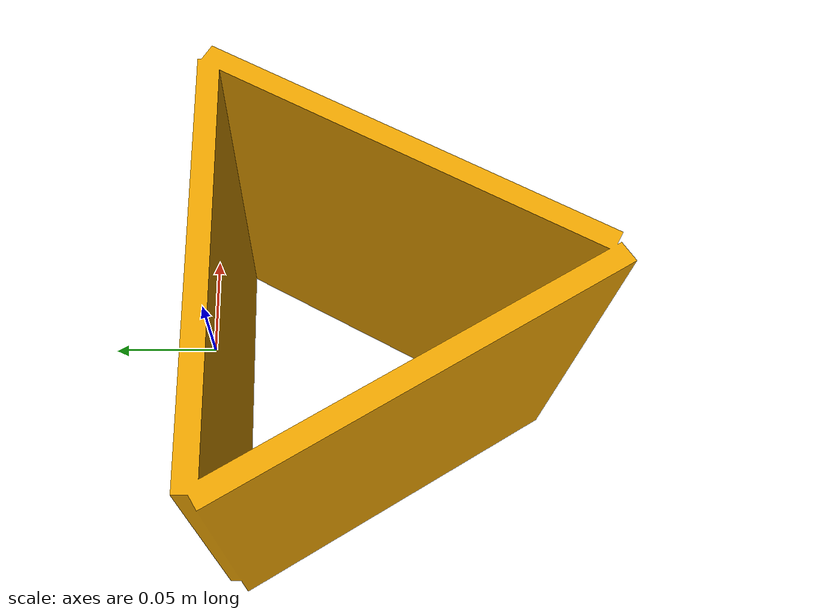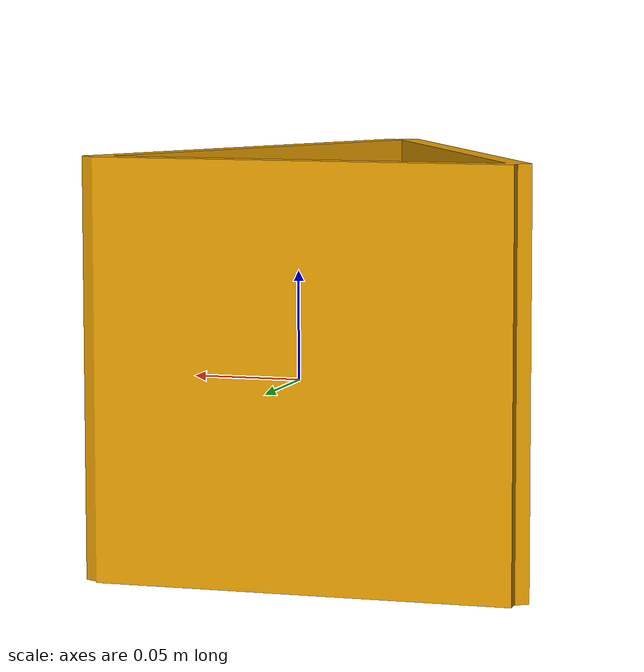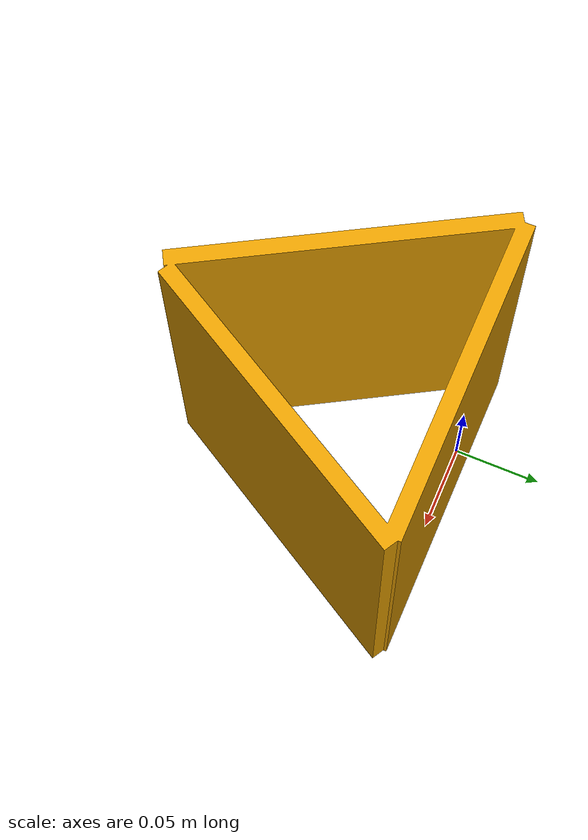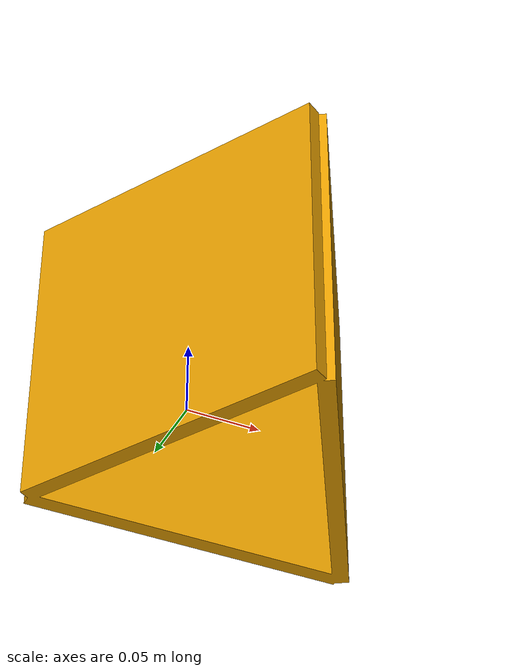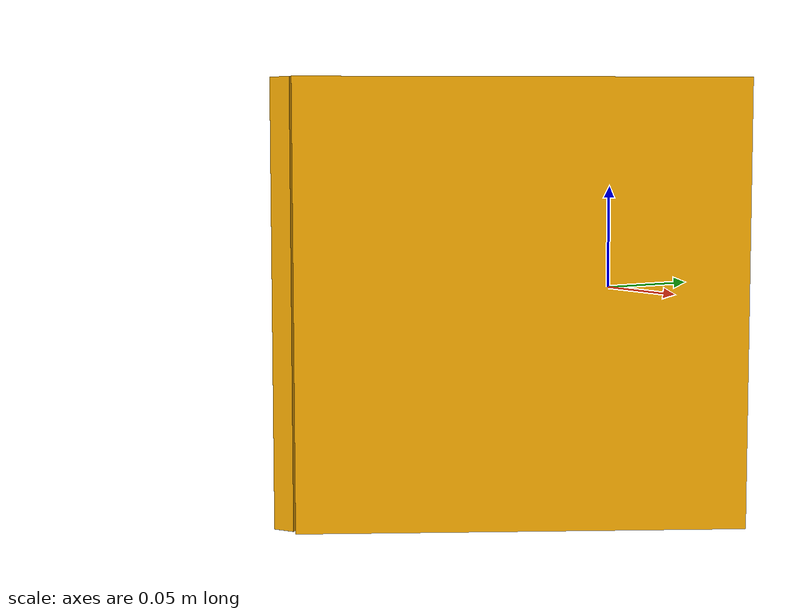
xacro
<?xml version="1.0"?>
<robot xmlns:xacro="http://www.ros.org/wiki/xacro" name="artag_0">

  <link name="tennis_ball_base_link">
        <visual>
            <geometry>
                <mesh filename="package://fiducial_slam/models/artag_0/mesh/artag_0.dae" scale="0.2 0.2 0.2"/>
            </geometry>
        </visual>

        <collision>
            <geometry>
                <mesh filename="package://fiducial_slam/models/artag_0/mesh/artag_0.dae" scale="0.2 0.2 0.2"/>
            </geometry>
        </collision>

        <inertial>
            <mass value=".01"/>
            <inertia ixx=".00003" ixy="0.000" ixz="0.000" iyy=".00003" iyz="0.000" izz=".00003"/>
        </inertial>
    </link>

    <gazebo reference="tennis_ball_base_link">
        <mu1> 1 </mu1>
        <mu2> 1 </mu2>
        <kp> 1160000 </kp>
        <kd> 1000 </kd>
        <selfCollide>False</selfCollide>
    </gazebo>

    <gazebo>
        <static> true </static>
    </gazebo>

</robot>
